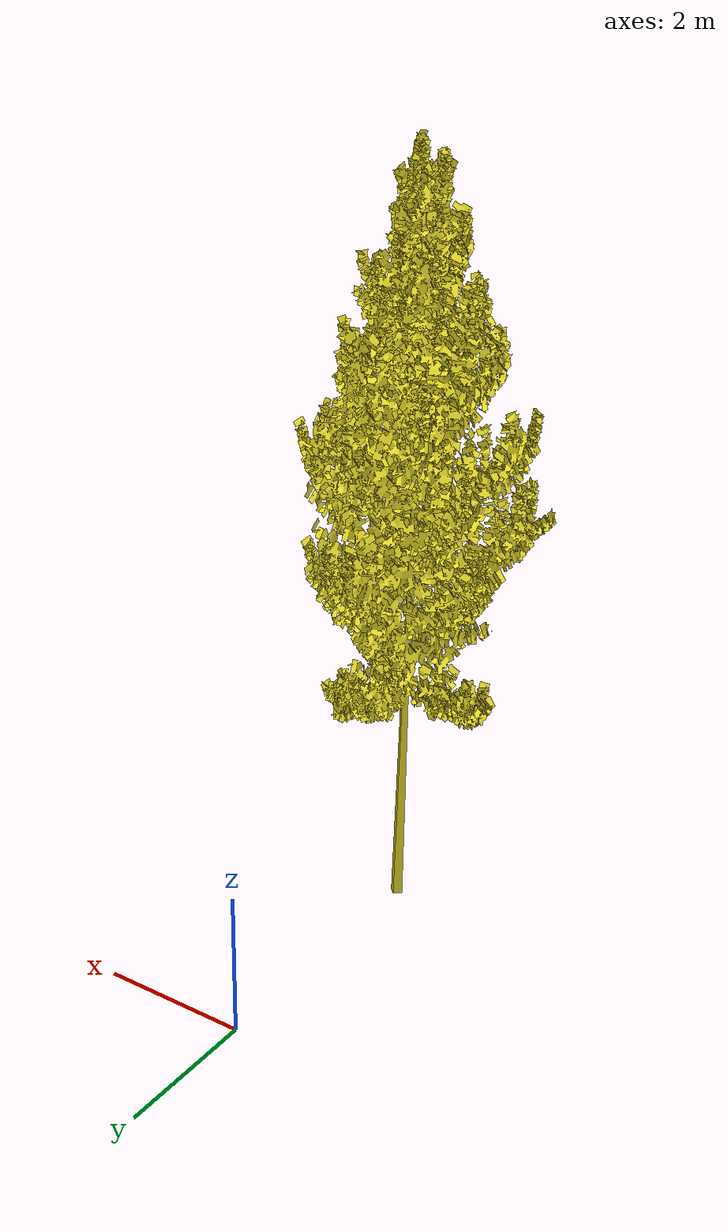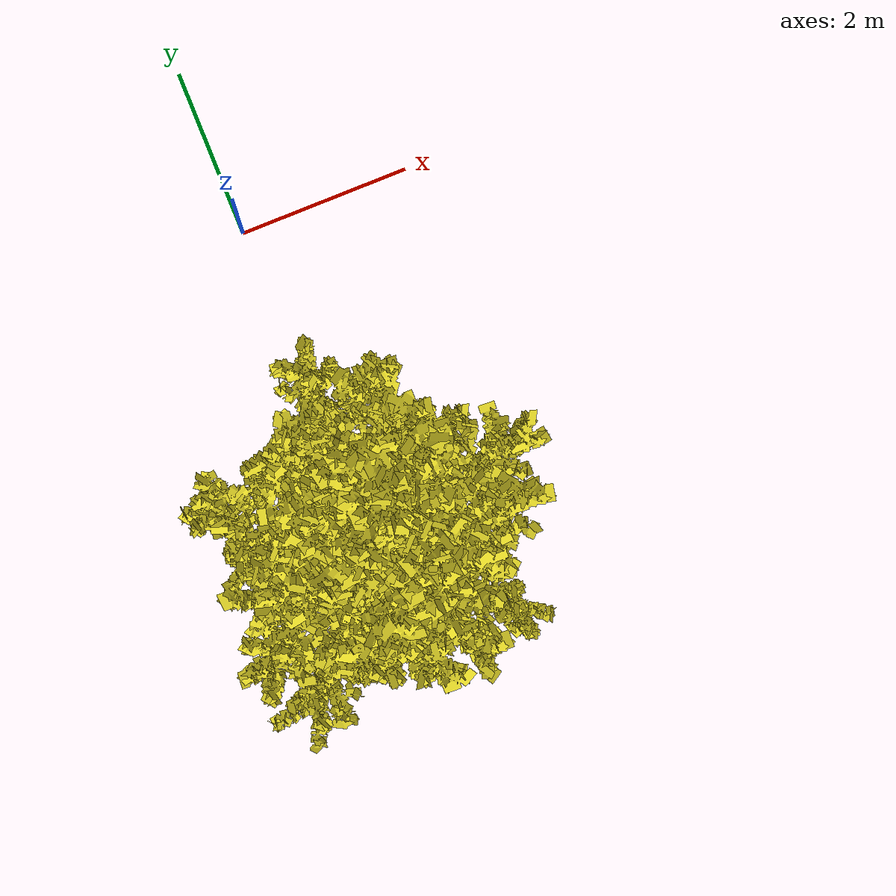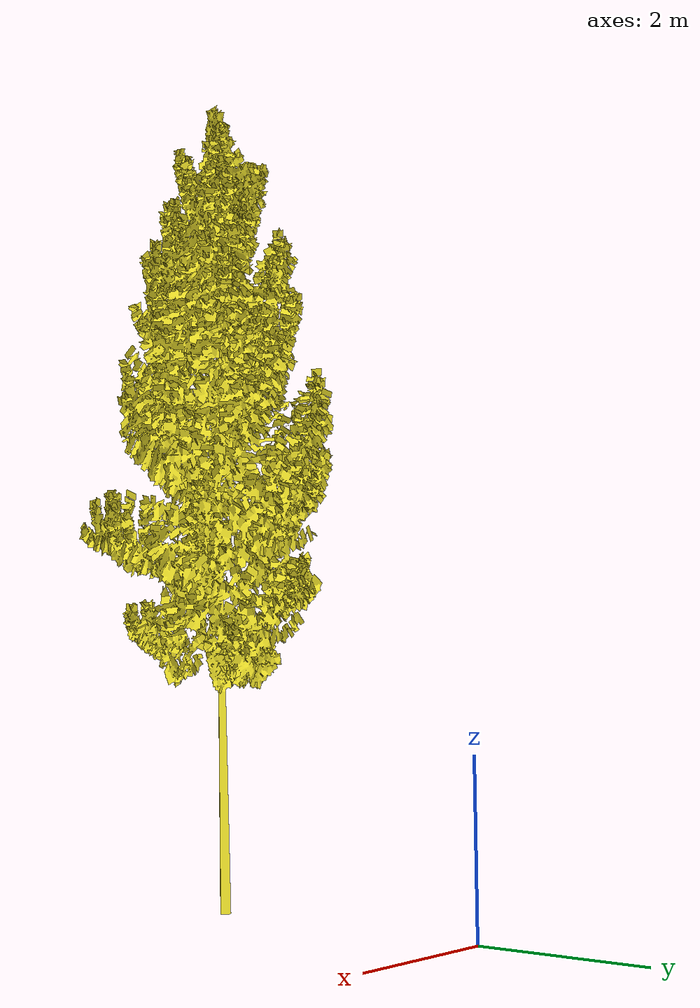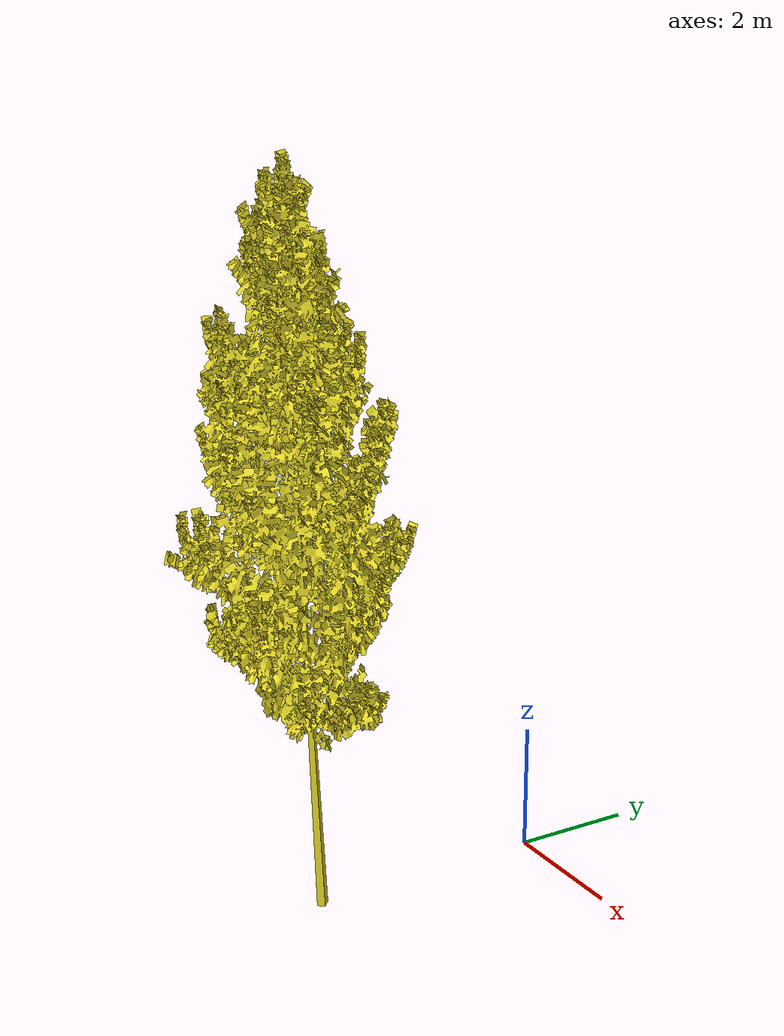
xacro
<?xml version="1.0"?>

<robot name="tree" xmlns:xacro="http://ros.org/wiki/xacro">
  <xacro:property name="PI" value="3.14" />

  <link name="world"></link>

    <link name='tree_base'>

      <inertial>
        <mass value="50" />
        <origin rpy="0 0 0" xyz="0 0 0"/>
        <inertia
          ixx="6.71747915" ixy="0.00002148" ixz="-0.00000024"
          iyx="0.00002148" iyy="6.71747915" iyz="-0.17180670"
          izx="-0.00000024" izy="0" izz="6.71747915"/>
      </inertial>

      <visual>
        <origin xyz="0 0 0" rpy="0 0 0" />
        <geometry>
          <mesh filename="package://uav_frontier_exploration_3d/models/tree/meshes/tree_25k_mesh.dae" scale="0.4 0.4 0.6" />
        </geometry>
      </visual>

      <collision name='collision'>
        <origin xyz="0 0 0" rpy="0 0 0"/>
        <geometry>
          <mesh filename="package://uav_frontier_exploration_3d/models/tree/meshes/tree_25k_mesh.dae" scale="0.4 0.4 0.6" />
        </geometry>
      </collision>
    </link>

    <joint name="joint_tree_base" type="fixed">
        <origin xyz="0 0 0" rpy="0 0 0"/>
        <parent link="world"/>
        <child link="tree_base"/>
    </joint>

  <gazebo reference="tree_base">
    <material>Gazebo/Yellow</material>
  </gazebo>
  <gazebo>
    <static>true</static>
  </gazebo>

</robot>
